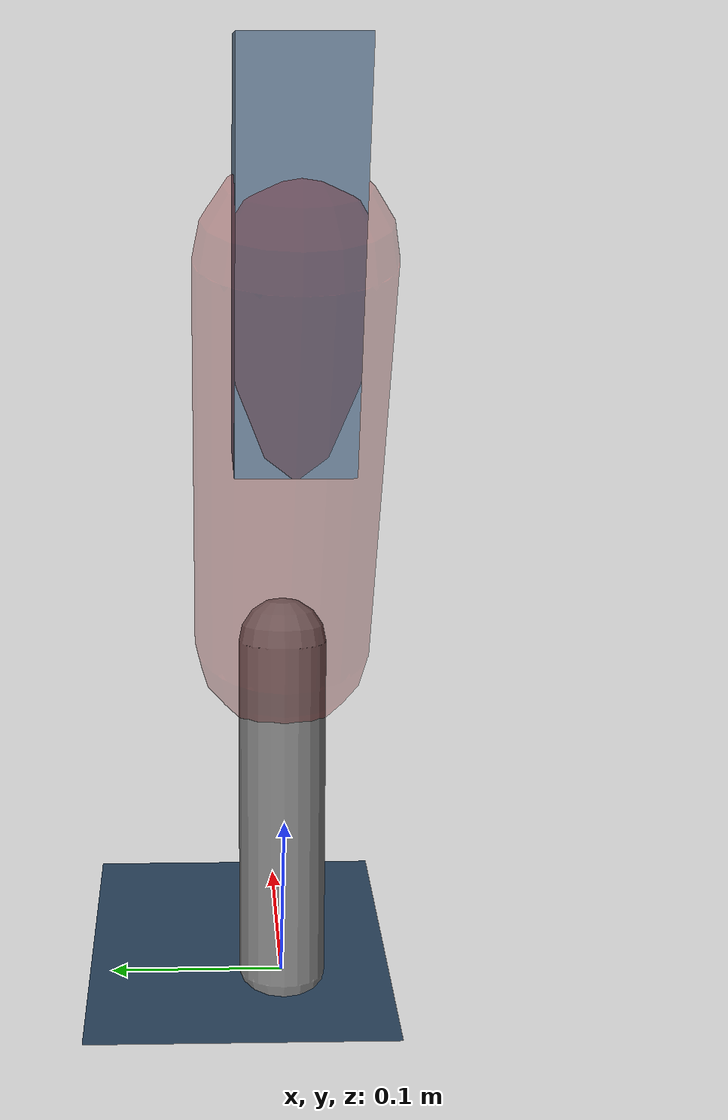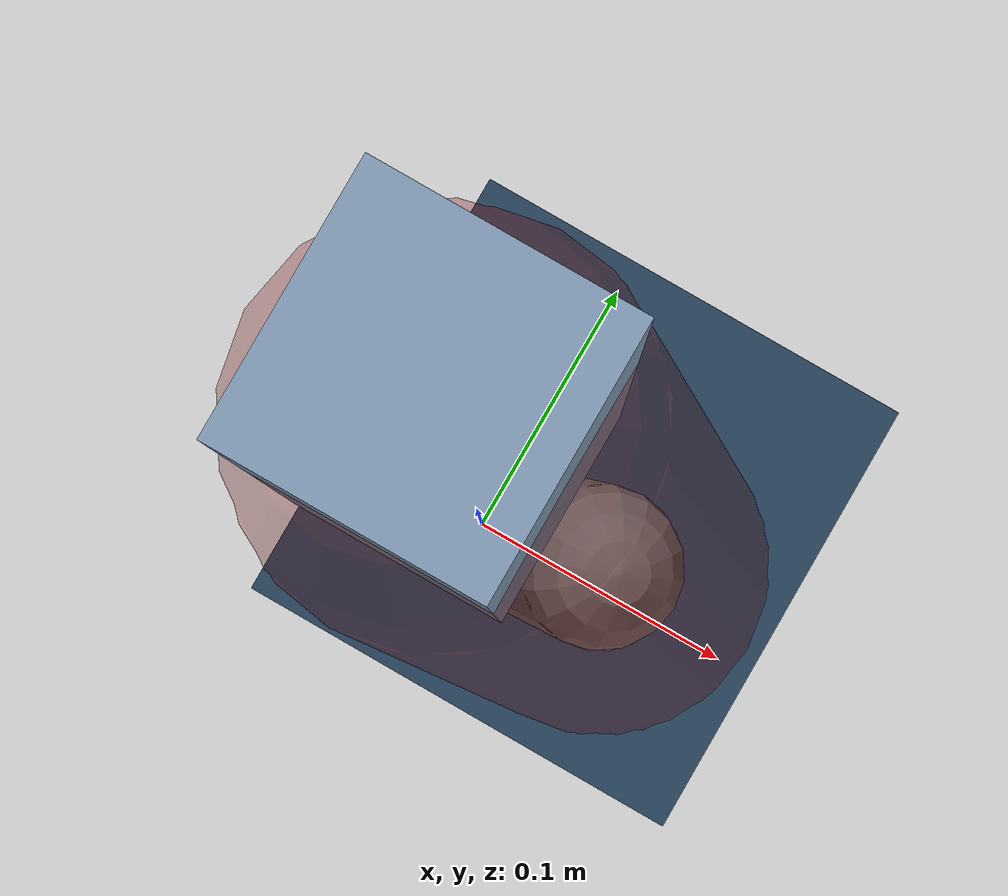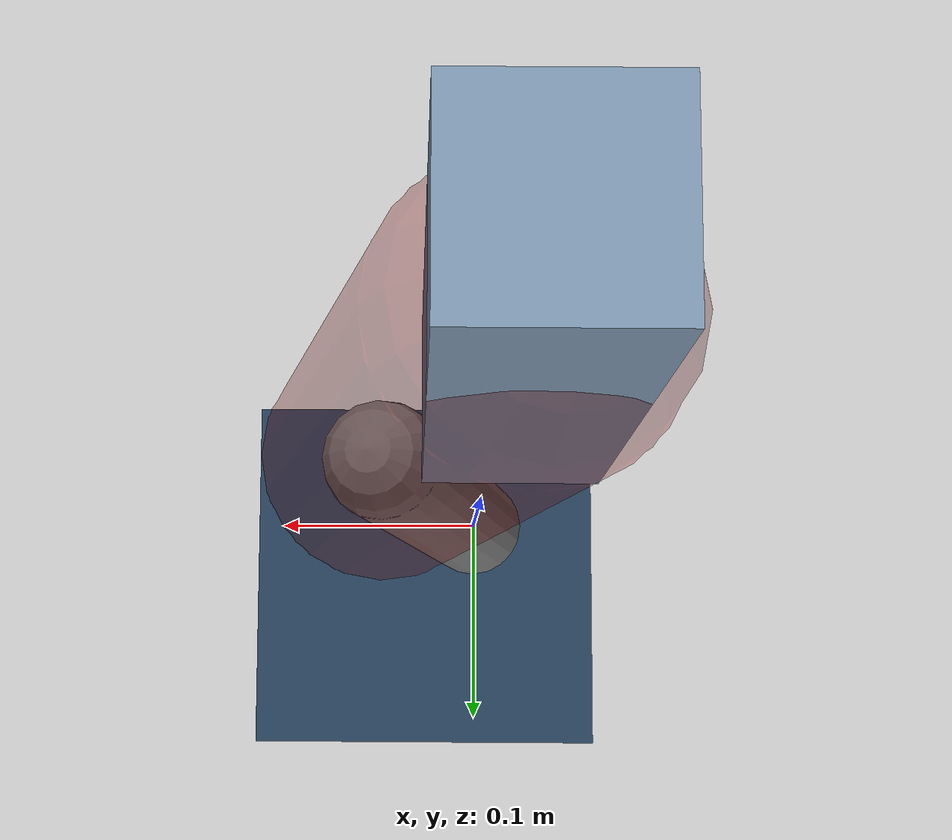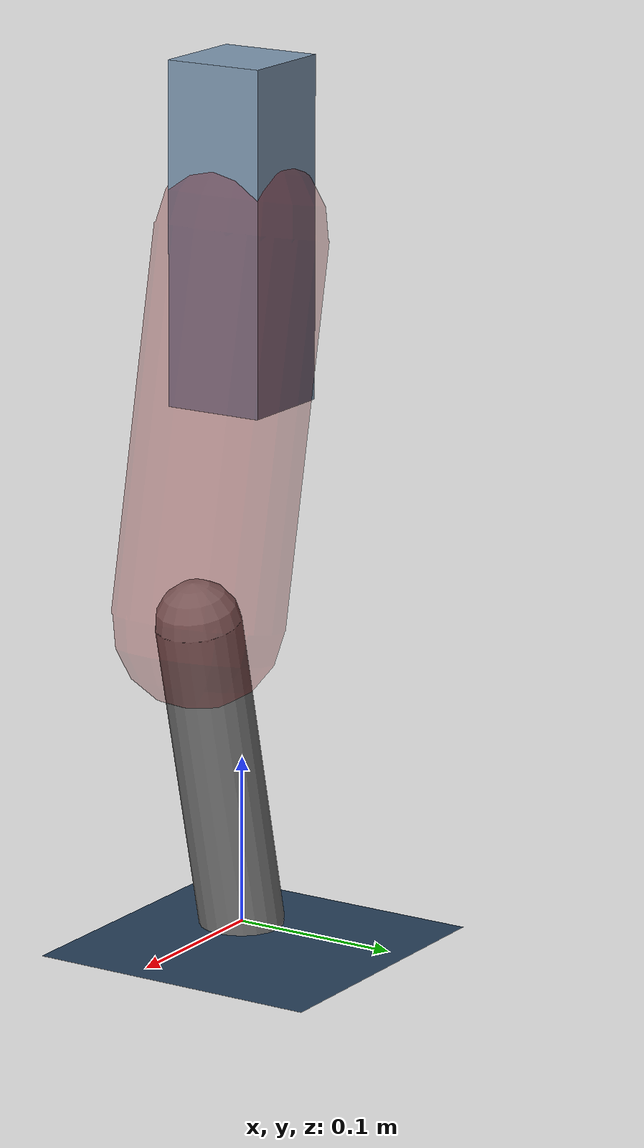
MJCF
<mujoco model="Hopper2D">
	<compiler inertiafromgeom="true" angle="radian" />
	<option timestep="0.001" integrator="implicit" cone="elliptic" solver="Newton" tolerance="1e-10" />

	<default>
		<geom contype="1" conaffinity="1" condim="3" friction="2 0.005 0.0001" solref="0.005 1" />
		<joint limited="true" damping="0.1" />
	</default>

	<asset>
		<texture name="skybox" type="skybox" builtin="gradient" rgb1=".4 .6 .8" rgb2="0 0 0" width="800" height="800" />
		<texture name="grid" type="2d" builtin="checker" rgb1=".1 .2 .3" rgb2=".2 .3 .4" width="300" height="300" mark="edge" markrgb=".2 .3 .4" />
		<material name="ground" texture="grid" texrepeat="1 1" texuniform="true" reflectance="0.1" />
		<material name="leg" rgba="0.5 0.6 0.7 1" />
	</asset>

	<worldbody>

		<geom name="floor" type="plane" size="5 5 0.25" material="ground" />

		<light directional="false" diffuse="0.8 0.8 0.8" specular="0.3 0.3 0.3" pos="0 0 2" dir="0 0 -1" />
		<light mode="targetbodycom" target="base" directional="false" diffuse="0.8 0.8 0.8" specular="0.3 0.3 0.3" pos="0 0 2" dir="0 0 -1" />

		<camera name="fixed" pos="0 -2 1" xyaxes="1 0 0 0 0 1" />
		<camera name="tracking" mode="trackcom" pos="0 -3 1" />

		<body name="root" pos="0 0 0.4117442995514608">
			<joint name="slide_x" type="slide" axis="1 0 0" range="-100 100" />
			<joint name="slide_z" type="slide" axis="0 0 1" range="0 10" />

			<body name="base" pos="0 0 0">
				<geom name="torso" type="box" size="0.03 0.03 0.1" mass="2.4290000000000003" material="leg" />

				<body name="link1" pos="0 0 0" euler="0 1.3660990094752359 0">
					<joint type="hinge" axis="0 -1 0" pos="0 0 0" name="hinge1" limited="true" range="-3.14 3.14" stiffness="0" damping="0.1" />
					<geom name="thigh" type="capsule" fromto="0 0 0 0.2241022378243066 0 0" size="0.05" rgba="0.5 0 0 0.3" mass="0.7900555945607665" />

					<body name="link2" pos="0.2241022378243066 0 0" euler="0 0.43727293201039086 0">
						<joint type="hinge" axis="0 -1 0" pos="0 0 0" name="hinge2" limited="true" range="-3.14 3.14" stiffness="0" damping="0.1" />
						<geom name="shank" type="capsule" fromto="0 0 0 0.1976420617271542 0 0" size="0.025" mass="0.39891364938172336" />

					</body>
				</body>
			</body>
		</body>
	</worldbody>

	<actuator>
		<motor name="torque1" joint="hinge1" ctrlrange="-57.97628616876 57.97628616876" ctrllimited="true" gear="1" />
		<motor name="torque2" joint="hinge2" ctrlrange="-85.76184589138454 85.76184589138454" ctrllimited="true" gear="1" />
	</actuator>
</mujoco>
